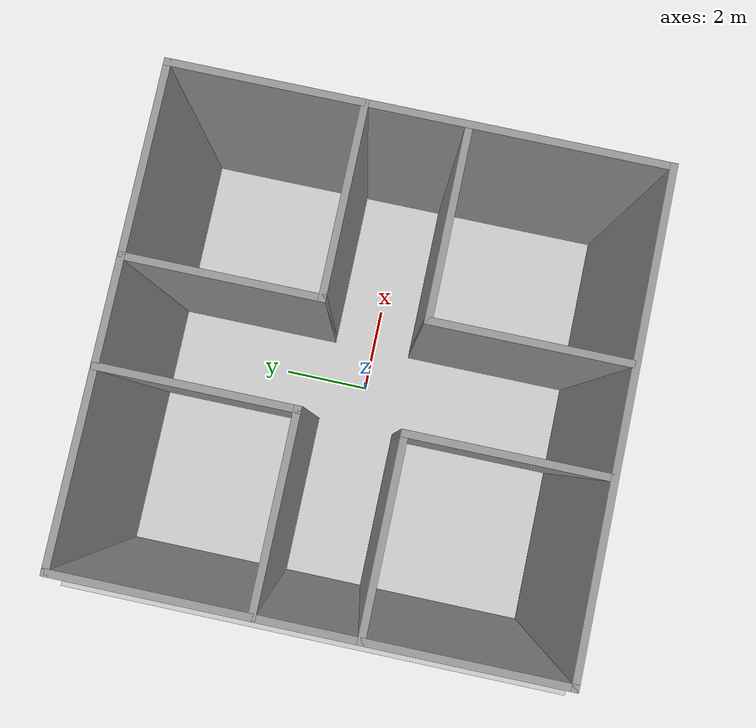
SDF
<sdf version="1.6">
 <world name="default">
  <light name="sun" type="directional">
   <pose>0 0 10 0 -0 0</pose>
   <diffuse>0.8 0.8 0.8 1</diffuse>
   <specular>0.2 0.2 0.2 1</specular>
   <attenuation>
    <range>1000</range>
    <constant>0.9</constant>
    <linear>0.01</linear>
    <quadratic>0.001</quadratic>
   </attenuation>
   <direction>-0.5 0.1 -0.9</direction>
  </light>
  <model name="ground_plane">
   <static>1</static>
   <link name="link">
    <collision name="collision">
     <geometry><plane><normal>0 0 1</normal><size>100 100</size></plane></geometry>
     <surface>
      <contact><collide_bitmask>65535</collide_bitmask></contact>
      <friction><ode><mu>100</mu><mu2>50</mu2></ode></friction>
     </surface>
    </collision>
    <visual name="visual">
     <cast_shadows>0</cast_shadows>
     <geometry><plane><normal>0 0 1</normal><size>100 100</size></plane></geometry>
     <material>
      <script><uri>file://media/materials/scripts/gazebo.material</uri><name>Gazebo/Grey</name></script>
     </material>
    </visual>
   </link>
  </model>
  <gravity>0 0 -9.8</gravity>
  <magnetic_field>6e-06 2.3e-05 -4.2e-05</magnetic_field>
  <atmosphere type="adiabatic"/>
  <physics name="default_physics" default="0" type="ode">
   <max_step_size>0.001</max_step_size>
   <real_time_factor>1</real_time_factor>
   <real_time_update_rate>1000</real_time_update_rate>
  </physics>
  <scene><ambient>0.4 0.4 0.4 1</ambient><background>0.7 0.7 0.7 1</background><shadows>1</shadows></scene>
  <spherical_coordinates>
   <surface_model>EARTH_WGS84</surface_model>
   <latitude_deg>0</latitude_deg>
   <longitude_deg>0</longitude_deg>
   <elevation>0</elevation>
   <heading_deg>0</heading_deg>
  </spherical_coordinates>
  <model name="floor0">
   <link name="Wall_40">
    <collision name="Wall_40_Collision">
     <geometry><box><size>4 0.15 6</size></box></geometry>
     <pose>0 0 3 0 -0 0</pose>
    </collision>
    <visual name="Wall_40_Visual">
     <pose>0 0 3 0 -0 0</pose>
     <geometry><box><size>4 0.15 6</size></box></geometry>
     <material>
      <script><uri>file://media/materials/scripts/gazebo.material</uri><name>Gazebo/Grey</name></script>
      <ambient>1 1 1 1</ambient>
     </material>
     <meta><layer>0</layer></meta>
    </visual>
    <pose>-3 -0.975 0 0 -0 0</pose>
   </link>
   <link name="Wall_41">
    <collision name="Wall_41_Collision">
     <geometry><box><size>4 0.15 6</size></box></geometry>
     <pose>0 0 3 0 -0 0</pose>
    </collision>
    <visual name="Wall_41_Visual">
     <pose>0 0 3 0 -0 0</pose>
     <geometry><box><size>4 0.15 6</size></box></geometry>
     <material>
      <script><uri>file://media/materials/scripts/gazebo.material</uri><name>Gazebo/Grey</name></script>
      <ambient>1 1 1 1</ambient>
     </material>
     <meta><layer>0</layer></meta>
    </visual>
    <pose>-1.075 -2.9 0 0 0 -1.5708</pose>
   </link>
   <link name="Wall_48">
    <collision name="Wall_48_Collision">
     <geometry><box><size>4 0.15 6</size></box></geometry>
     <pose>0 0 3 0 -0 0</pose>
    </collision>
    <visual name="Wall_48_Visual">
     <pose>0 0 3 0 -0 0</pose>
     <geometry><box><size>4 0.15 6</size></box></geometry>
     <material>
      <script><uri>file://media/materials/scripts/gazebo.material</uri><name>Gazebo/Grey</name></script>
      <ambient>1 1 1 1</ambient>
     </material>
     <meta><layer>0</layer></meta>
    </visual>
    <pose>1.075 -2.9 0 0 -0 1.5708</pose>
   </link>
   <link name="Wall_49">
    <collision name="Wall_49_Collision">
     <geometry><box><size>4 0.15 6</size></box></geometry>
     <pose>0 0 3 0 -0 0</pose>
    </collision>
    <visual name="Wall_49_Visual">
     <pose>0 0 3 0 -0 0</pose>
     <geometry><box><size>4 0.15 6</size></box></geometry>
     <material>
      <script><uri>file://media/materials/scripts/gazebo.material</uri><name>Gazebo/Grey</name></script>
      <ambient>1 1 1 1</ambient>
     </material>
     <meta><layer>0</layer></meta>
    </visual>
    <pose>3 -0.975 0 0 -0 0</pose>
   </link>
   <link name="Wall_54">
    <collision name="Wall_54_Collision">
     <geometry><box><size>4 0.15 6</size></box></geometry>
     <pose>0 0 3 0 -0 0</pose>
    </collision>
    <visual name="Wall_54_Visual">
     <pose>0 0 3 0 -0 0</pose>
     <geometry><box><size>4 0.15 6</size></box></geometry>
     <material>
      <script><uri>file://media/materials/scripts/gazebo.material</uri><name>Gazebo/Grey</name></script>
      <ambient>1 1 1 1</ambient>
     </material>
     <meta><layer>0</layer></meta>
    </visual>
    <pose>-1.05421 2.98614 0 0 0 -1.5708</pose>
   </link>
   <link name="Wall_55">
    <collision name="Wall_55_Collision">
     <geometry><box><size>4 0.15 6</size></box></geometry>
     <pose>0 0 3 0 -0 0</pose>
    </collision>
    <visual name="Wall_55_Visual">
     <pose>0 0 3 0 -0 0</pose>
     <geometry><box><size>4 0.15 6</size></box></geometry>
     <material>
      <script><uri>file://media/materials/scripts/gazebo.material</uri><name>Gazebo/Grey</name></script>
      <ambient>1 1 1 1</ambient>
     </material>
     <meta><layer>0</layer></meta>
    </visual>
    <pose>-2.97921 1.06114 0 0 -0 3.14159</pose>
   </link>
   <link name="Wall_58">
    <collision name="Wall_58_Collision">
     <geometry><box><size>4 0.15 6</size></box></geometry>
     <pose>0 0 3 0 -0 0</pose>
    </collision>
    <visual name="Wall_58_Visual">
     <pose>0 0 3 0 -0 0</pose>
     <geometry><box><size>4 0.15 6</size></box></geometry>
     <material>
      <script><uri>file://media/materials/scripts/gazebo.material</uri><name>Gazebo/Grey</name></script>
      <ambient>1 1 1 1</ambient>
     </material>
     <meta><layer>0</layer></meta>
    </visual>
    <pose>1.075 2.98261 0 0 0 -1.5708</pose>
   </link>
   <link name="Wall_59">
    <collision name="Wall_59_Collision">
     <geometry><box><size>4 0.15 6</size></box></geometry>
     <pose>0 0 3 0 -0 0</pose>
    </collision>
    <visual name="Wall_59_Visual">
     <pose>0 0 3 0 -0 0</pose>
     <geometry><box><size>4 0.15 6</size></box></geometry>
     <material>
      <script><uri>file://media/materials/scripts/gazebo.material</uri><name>Gazebo/Grey</name></script>
      <ambient>1 1 1 1</ambient>
     </material>
     <meta><layer>0</layer></meta>
    </visual>
    <pose>3 1.05761 0 0 -0 0</pose>
   </link>
   <link name="Wall_79">
    <collision name="Wall_79_Collision">
     <geometry><box><size>10 0.15 6</size></box></geometry>
     <pose>0 0 3 0 -0 0</pose>
    </collision>
    <visual name="Wall_79_Visual">
     <pose>0 0 3 0 -0 0</pose>
     <geometry><box><size>10 0.15 6</size></box></geometry>
     <material>
      <script><uri>file://media/materials/scripts/gazebo.material</uri><name>Gazebo/Grey</name></script>
      <ambient>1 1 1 1</ambient>
     </material>
     <meta><layer>0</layer></meta>
    </visual>
    <pose>0 -4.925 0 0 -0 0</pose>
   </link>
   <link name="Wall_80">
    <collision name="Wall_80_Collision">
     <geometry><box><size>10 0.15 6</size></box></geometry>
     <pose>0 0 3 0 -0 0</pose>
    </collision>
    <visual name="Wall_80_Visual">
     <pose>0 0 3 0 -0 0</pose>
     <geometry><box><size>10 0.15 6</size></box></geometry>
     <material>
      <script><uri>file://media/materials/scripts/gazebo.material</uri><name>Gazebo/Grey</name></script>
      <ambient>1 1 1 1</ambient>
     </material>
     <meta><layer>0</layer></meta>
    </visual>
    <pose>4.925 0 0 0 -0 1.5708</pose>
   </link>
   <link name="Wall_81">
    <collision name="Wall_81_Collision">
     <geometry><box><size>10 0.15 6</size></box></geometry>
     <pose>0 0 3 0 -0 0</pose>
    </collision>
    <visual name="Wall_81_Visual">
     <pose>0 0 3 0 -0 0</pose>
     <geometry><box><size>10 0.15 6</size></box></geometry>
     <material>
      <script><uri>file://media/materials/scripts/gazebo.material</uri><name>Gazebo/Grey</name></script>
      <ambient>1 1 1 1</ambient>
     </material>
     <meta><layer>0</layer></meta>
    </visual>
    <pose>0 4.925 0 0 -0 3.14159</pose>
   </link>
   <link name="Wall_84">
    <collision name="Wall_84_Collision">
     <geometry><box><size>10 0.15 6</size></box></geometry>
     <pose>0 0 3 0 -0 0</pose>
    </collision>
    <visual name="Wall_84_Visual">
     <pose>0 0 3 0 -0 0</pose>
     <geometry><box><size>10 0.15 6</size></box></geometry>
     <material>
      <script><uri>file://media/materials/scripts/gazebo.material</uri><name>Gazebo/Grey</name></script>
      <ambient>1 1 1 1</ambient>
     </material>
     <meta><layer>0</layer></meta>
    </visual>
    <pose>-4.925 0 0 0 0 -1.5708</pose>
   </link>
   <static>1</static>
  </model>
 </world>
</sdf>
